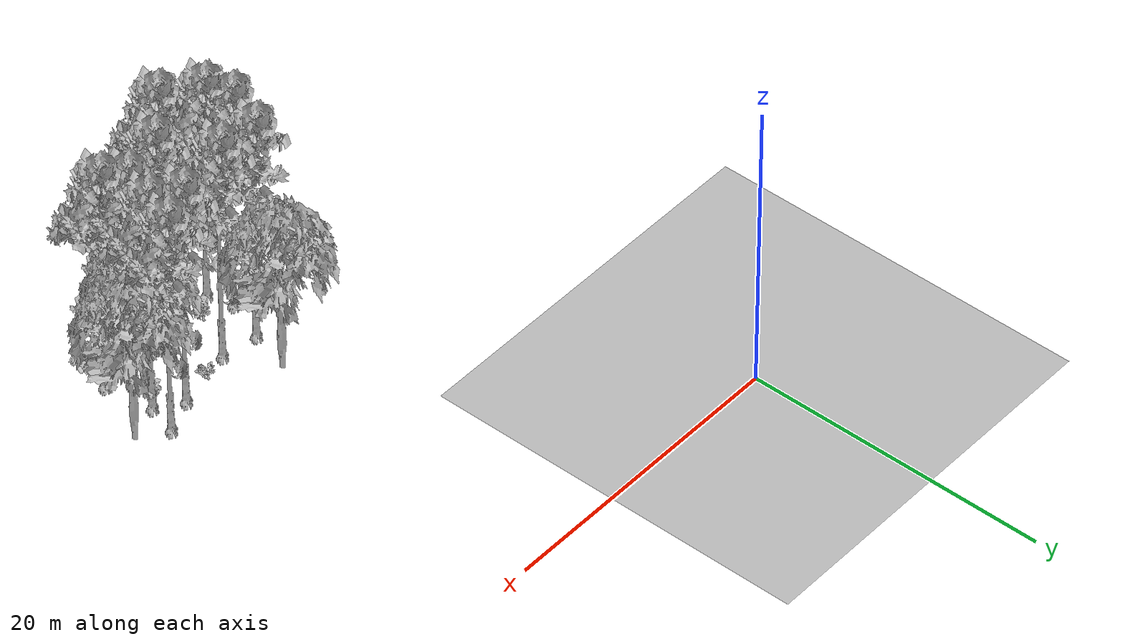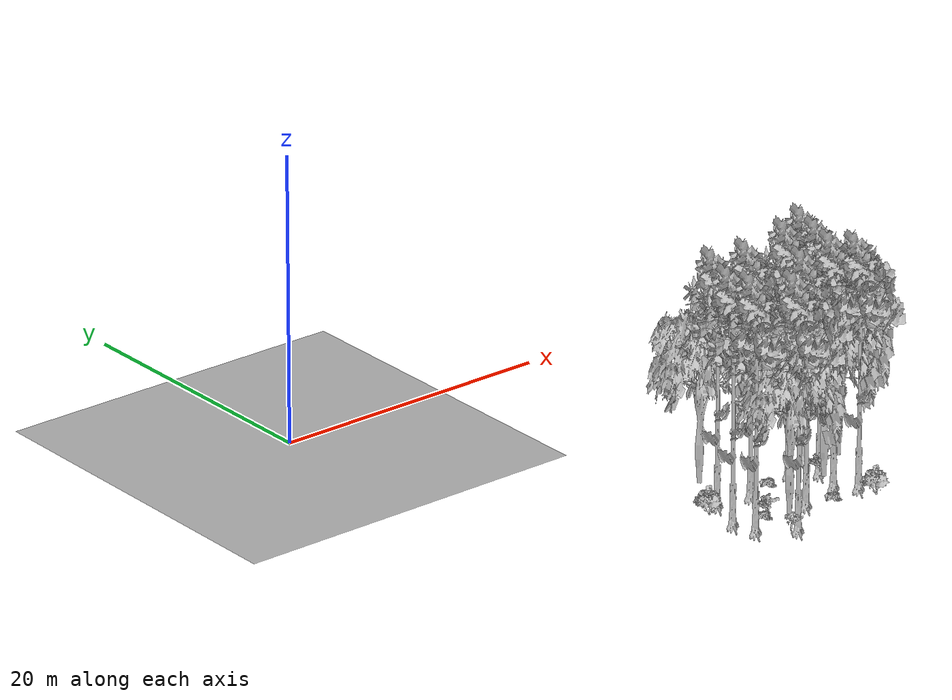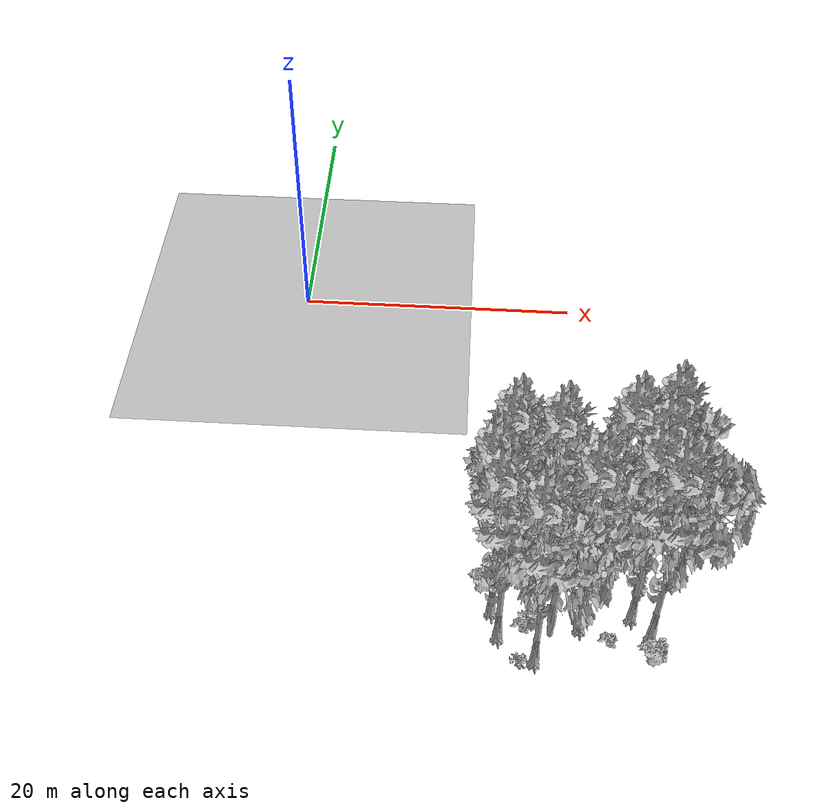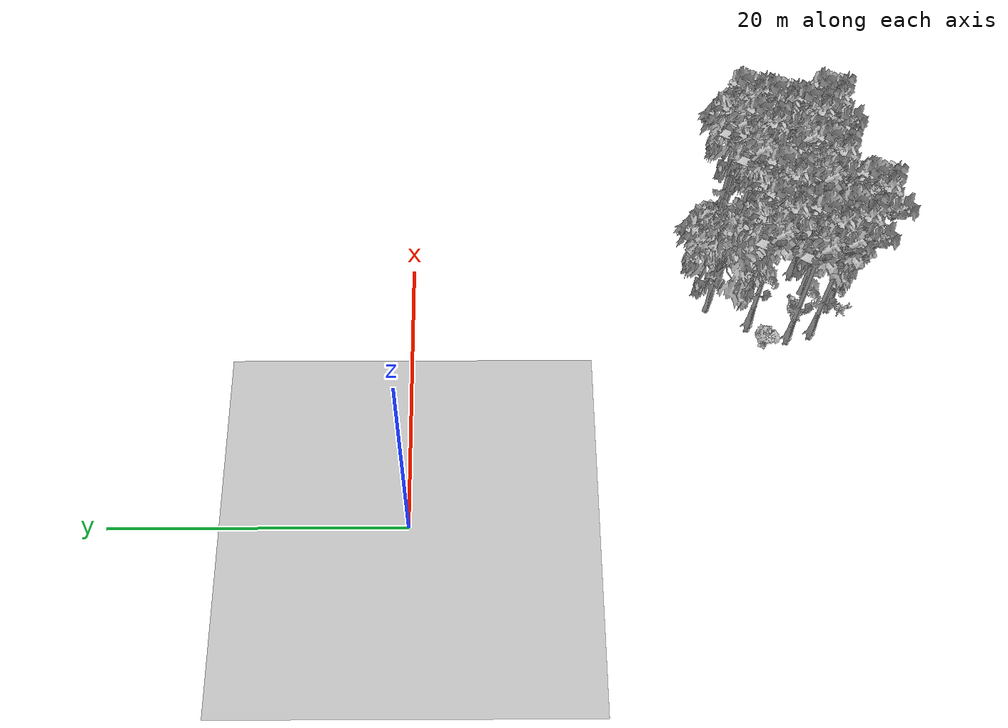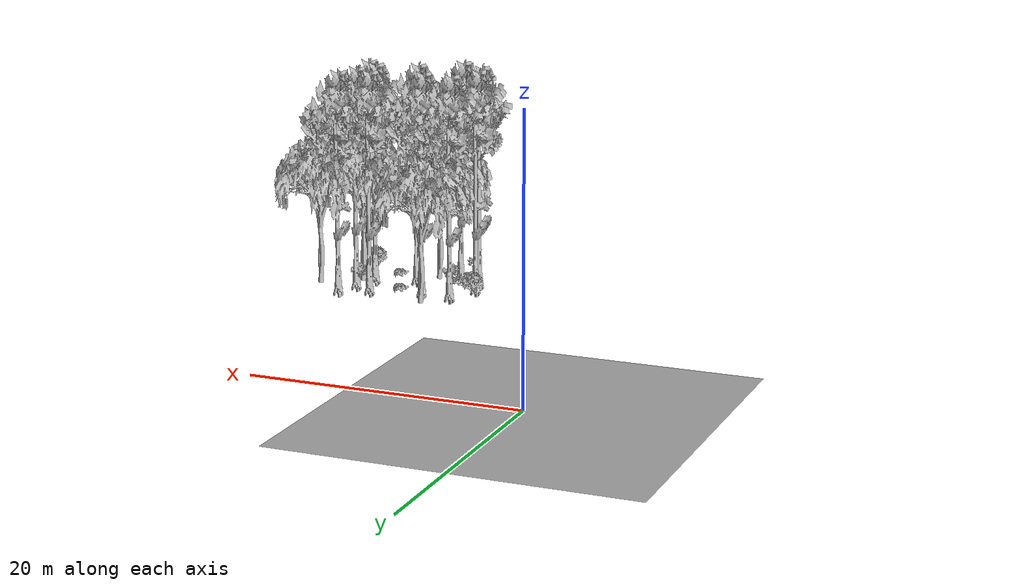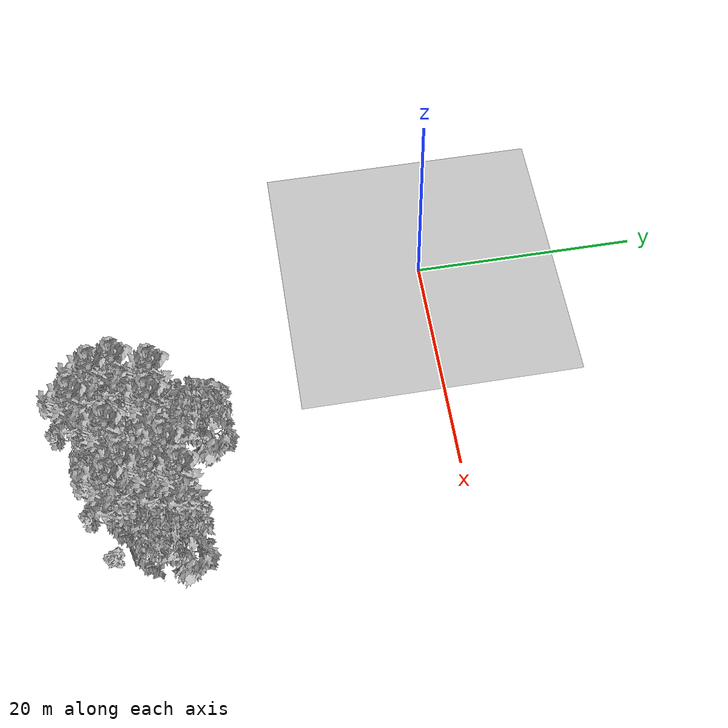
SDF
<sdf version="1.7">
 <world name="default">
  <model name="ground_plane">
   <static>1</static>
   <link name="link">
    <collision name="collision">
     <pose>-50 0 0 0 -0 0</pose>
     <geometry><plane><normal>0 0 1</normal><size>80 80</size></plane></geometry>
     <surface><contact><ode><min_depth>0.01</min_depth><max_vel>0</max_vel></ode></contact></surface>
    </collision>
    <visual name="grass">
     <cast_shadows>0</cast_shadows>
     <geometry>
      <mesh>
       <scale>0.46714285714285714 0.46714285714285714 0.1</scale>
       <uri>file://grass_plane/meshes/grass_plane.dae</uri>
      </mesh>
     </geometry>
    </visual>
   </link>
  </model>
  <model name="Tree 10">
   <static>1</static>
   <pose>26.165141318187068 -23.452140027372394 0 1.57079 -0 0</pose>
   <link name="link">
    <collision name="collision">
     <geometry><mesh><scale>3.5 5 3.5</scale><uri>model://tree_2/meshes/tree_2.obj</uri></mesh></geometry>
    </collision>
    <visual name="visual">
     <geometry><mesh><scale>3.5 5 3.5</scale><uri>model://tree_2/meshes/tree_2.obj</uri></mesh></geometry>
    </visual>
   </link>
  </model>
  <model name="Tree 19">
   <static>1</static>
   <pose>24.2888758817339 -22.473327997782818 0 1.57079 -0 0</pose>
   <link name="link">
    <collision name="collision">
     <geometry><mesh><scale>3.5 5 3.5</scale><uri>model://tree_9/meshes/tree_9.obj</uri></mesh></geometry>
    </collision>
    <visual name="visual">
     <geometry><mesh><scale>3.5 5 3.5</scale><uri>model://tree_9/meshes/tree_9.obj</uri></mesh></geometry>
    </visual>
   </link>
  </model>
  <model name="Tree 47">
   <static>1</static>
   <pose>22.04450325395301 -23.397041651891712 0 1.57079 -0 0</pose>
   <link name="link">
    <collision name="collision">
     <geometry><mesh><scale>3.5 5 3.5</scale><uri>model://tree_9/meshes/tree_9.obj</uri></mesh></geometry>
    </collision>
    <visual name="visual">
     <geometry><mesh><scale>3.5 5 3.5</scale><uri>model://tree_9/meshes/tree_9.obj</uri></mesh></geometry>
    </visual>
   </link>
  </model>
  <model name="Tree 95">
   <static>1</static>
   <pose>14.462358851647686 -26.692512228428534 0 1.57079 -0 0</pose>
   <link name="link">
    <collision name="collision">
     <geometry><mesh><scale>3.5 5 3.5</scale><uri>model://tree_9/meshes/tree_9.obj</uri></mesh></geometry>
    </collision>
    <visual name="visual">
     <geometry><mesh><scale>3.5 5 3.5</scale><uri>model://tree_9/meshes/tree_9.obj</uri></mesh></geometry>
    </visual>
   </link>
  </model>
  <model name="Tree 206">
   <static>1</static>
   <pose>23.33605595323226 -25.25843349962825 0 1.57079 -0 0</pose>
   <link name="link">
    <collision name="collision">
     <geometry><mesh><scale>3.5 5 3.5</scale><uri>model://tree_2/meshes/tree_2.obj</uri></mesh></geometry>
    </collision>
    <visual name="visual">
     <geometry><mesh><scale>3.5 5 3.5</scale><uri>model://tree_2/meshes/tree_2.obj</uri></mesh></geometry>
    </visual>
   </link>
  </model>
  <model name="Tree 219">
   <static>1</static>
   <pose>24.16564116847647 -27.711173810759504 0 1.57079 -0 0</pose>
   <link name="link">
    <collision name="collision">
     <geometry><mesh><scale>3.5 5 3.5</scale><uri>model://tree_9/meshes/tree_9.obj</uri></mesh></geometry>
    </collision>
    <visual name="visual">
     <geometry><mesh><scale>3.5 5 3.5</scale><uri>model://tree_9/meshes/tree_9.obj</uri></mesh></geometry>
    </visual>
   </link>
  </model>
  <model name="Tree 236">
   <static>1</static>
   <pose>14.878415031089617 -28.397017624060368 0 1.57079 -0 0</pose>
   <link name="link">
    <collision name="collision">
     <geometry><mesh><scale>3.5 5 3.5</scale><uri>model://tree_9/meshes/tree_9.obj</uri></mesh></geometry>
    </collision>
    <visual name="visual">
     <geometry><mesh><scale>3.5 5 3.5</scale><uri>model://tree_9/meshes/tree_9.obj</uri></mesh></geometry>
    </visual>
   </link>
  </model>
  <model name="Tree 307">
   <static>1</static>
   <pose>16.5136959873614 -21.031442235963745 0 1.57079 -0 0</pose>
   <link name="link">
    <collision name="collision">
     <geometry><mesh><scale>3.5 5 3.5</scale><uri>model://tree_2/meshes/tree_2.obj</uri></mesh></geometry>
    </collision>
    <visual name="visual">
     <geometry><mesh><scale>3.5 5 3.5</scale><uri>model://tree_2/meshes/tree_2.obj</uri></mesh></geometry>
    </visual>
   </link>
  </model>
  <model name="Tree 398">
   <static>1</static>
   <pose>18.007954454991243 -24.325017276855625 0 1.57079 -0 0</pose>
   <link name="link">
    <collision name="collision">
     <geometry><mesh><scale>3.5 5 3.5</scale><uri>model://tree_9/meshes/tree_9.obj</uri></mesh></geometry>
    </collision>
    <visual name="visual">
     <geometry><mesh><scale>3.5 5 3.5</scale><uri>model://tree_9/meshes/tree_9.obj</uri></mesh></geometry>
    </visual>
   </link>
  </model>
  <model name="Tree 427">
   <static>1</static>
   <pose>23.037806148935736 -26.586823607879424 0 1.57079 -0 0</pose>
   <link name="link">
    <collision name="collision">
     <geometry><mesh><scale>3.5 5 3.5</scale><uri>model://tree_9/meshes/tree_9.obj</uri></mesh></geometry>
    </collision>
    <visual name="visual">
     <geometry><mesh><scale>3.5 5 3.5</scale><uri>model://tree_9/meshes/tree_9.obj</uri></mesh></geometry>
    </visual>
   </link>
  </model>
  <model name="Tree 454">
   <static>1</static>
   <pose>19.86027438147611 -27.533828696907527 0 1.57079 -0 0</pose>
   <link name="link">
    <collision name="collision">
     <geometry><mesh><scale>3.5 5 3.5</scale><uri>model://tree_9/meshes/tree_9.obj</uri></mesh></geometry>
    </collision>
    <visual name="visual">
     <geometry><mesh><scale>3.5 5 3.5</scale><uri>model://tree_9/meshes/tree_9.obj</uri></mesh></geometry>
    </visual>
   </link>
  </model>
  <model name="Tree 531">
   <static>1</static>
   <pose>17.075614800741533 -29.9303673519415 0 1.57079 -0 0</pose>
   <link name="link">
    <collision name="collision">
     <geometry><mesh><scale>3.5 5 3.5</scale><uri>model://tree_9/meshes/tree_9.obj</uri></mesh></geometry>
    </collision>
    <visual name="visual">
     <geometry><mesh><scale>3.5 5 3.5</scale><uri>model://tree_9/meshes/tree_9.obj</uri></mesh></geometry>
    </visual>
   </link>
  </model>
  <model name="Tree 562">
   <static>1</static>
   <pose>17.97416797176917 -28.014825767112967 0 1.57079 -0 0</pose>
   <link name="link">
    <collision name="collision">
     <geometry><mesh><scale>3.5 5 3.5</scale><uri>model://tree_2/meshes/tree_2.obj</uri></mesh></geometry>
    </collision>
    <visual name="visual">
     <geometry><mesh><scale>3.5 5 3.5</scale><uri>model://tree_2/meshes/tree_2.obj</uri></mesh></geometry>
    </visual>
   </link>
  </model>
  <model name="Tree 584">
   <static>1</static>
   <pose>23.692332608806844 -24.47613770320979 0 1.57079 -0 0</pose>
   <link name="link">
    <collision name="collision">
     <geometry><mesh><scale>3.5 5 3.5</scale><uri>model://tree_9/meshes/tree_9.obj</uri></mesh></geometry>
    </collision>
    <visual name="visual">
     <geometry><mesh><scale>3.5 5 3.5</scale><uri>model://tree_9/meshes/tree_9.obj</uri></mesh></geometry>
    </visual>
   </link>
  </model>
  <model name="Tree 636">
   <static>1</static>
   <pose>15.518412892420855 -23.98357392745816 0 1.57079 -0 0</pose>
   <link name="link">
    <collision name="collision">
     <geometry><mesh><scale>3.5 5 3.5</scale><uri>model://tree_9/meshes/tree_9.obj</uri></mesh></geometry>
    </collision>
    <visual name="visual">
     <geometry><mesh><scale>3.5 5 3.5</scale><uri>model://tree_9/meshes/tree_9.obj</uri></mesh></geometry>
    </visual>
   </link>
  </model>
  <model name="Bush 44">
   <static>1</static>
   <pose>19.694441920399363 -24.07710272241036 0 1.57079 -0 0</pose>
   <link name="link">
    <collision name="collision">
     <geometry><mesh><scale>2 2 2</scale><uri>model://bush_2/meshes/bush_2.obj</uri></mesh></geometry>
     <surface><contact><collide_without_contact>false</collide_without_contact></contact></surface>
    </collision>
    <visual name="visual">
     <geometry><mesh><scale>2 2 2</scale><uri>model://bush_2/meshes/bush_2.obj</uri></mesh></geometry>
    </visual>
   </link>
  </model>
  <model name="Bush 79">
   <static>1</static>
   <pose>24.12168941084294 -29.47218548767807 0 1.57079 -0 0</pose>
   <link name="link">
    <collision name="collision">
     <geometry><mesh><scale>2 2 2</scale><uri>model://bush_1/meshes/bush_1.obj</uri></mesh></geometry>
     <surface><contact><collide_without_contact>false</collide_without_contact></contact></surface>
    </collision>
    <visual name="visual">
     <geometry><mesh><scale>2 2 2</scale><uri>model://bush_1/meshes/bush_1.obj</uri></mesh></geometry>
    </visual>
   </link>
  </model>
  <model name="Bush 148">
   <static>1</static>
   <pose>16.313219014614013 -27.53567806476906 0 1.57079 -0 0</pose>
   <link name="link">
    <collision name="collision">
     <geometry><mesh><scale>2 2 2</scale><uri>model://bush_2/meshes/bush_2.obj</uri></mesh></geometry>
     <surface><contact><collide_without_contact>false</collide_without_contact></contact></surface>
    </collision>
    <visual name="visual">
     <geometry><mesh><scale>2 2 2</scale><uri>model://bush_2/meshes/bush_2.obj</uri></mesh></geometry>
    </visual>
   </link>
  </model>
  <model name="Bush 293">
   <static>1</static>
   <pose>16.151056527851978 -30.38166254583014 0 1.57079 -0 0</pose>
   <link name="link">
    <collision name="collision">
     <geometry><mesh><scale>2 2 2</scale><uri>model://bush_5/meshes/bush_5.obj</uri></mesh></geometry>
     <surface><contact><collide_without_contact>false</collide_without_contact></contact></surface>
    </collision>
    <visual name="visual">
     <geometry><mesh><scale>2 2 2</scale><uri>model://bush_5/meshes/bush_5.obj</uri></mesh></geometry>
    </visual>
   </link>
  </model>
  <model name="Bush 421">
   <static>1</static>
   <pose>16.8720200961643 -27.283938363463143 0 1.57079 -0 0</pose>
   <link name="link">
    <collision name="collision">
     <geometry><mesh><scale>2 2 2</scale><uri>model://bush_0/meshes/bush_0.obj</uri></mesh></geometry>
     <surface><contact><collide_without_contact>false</collide_without_contact></contact></surface>
    </collision>
    <visual name="visual">
     <geometry><mesh><scale>2 2 2</scale><uri>model://bush_0/meshes/bush_0.obj</uri></mesh></geometry>
    </visual>
   </link>
  </model>
  <model name="Bush 441">
   <static>1</static>
   <pose>23.59394568491659 -24.687504138807128 0 1.57079 -0 0</pose>
   <link name="link">
    <collision name="collision">
     <geometry><mesh><scale>2 2 2</scale><uri>model://bush_0/meshes/bush_0.obj</uri></mesh></geometry>
     <surface><contact><collide_without_contact>false</collide_without_contact></contact></surface>
    </collision>
    <visual name="visual">
     <geometry><mesh><scale>2 2 2</scale><uri>model://bush_0/meshes/bush_0.obj</uri></mesh></geometry>
    </visual>
   </link>
  </model>
  <model name="Bush 484">
   <static>1</static>
   <pose>13.940844203867464 -25.093794623172457 0 1.57079 -0 0</pose>
   <link name="link">
    <collision name="collision">
     <geometry><mesh><scale>2 2 2</scale><uri>model://bush_1/meshes/bush_1.obj</uri></mesh></geometry>
     <surface><contact><collide_without_contact>false</collide_without_contact></contact></surface>
    </collision>
    <visual name="visual">
     <geometry><mesh><scale>2 2 2</scale><uri>model://bush_1/meshes/bush_1.obj</uri></mesh></geometry>
    </visual>
   </link>
  </model>
  <model name="Bush 514">
   <static>1</static>
   <pose>21.548437669084564 -28.21754564911169 0 1.57079 -0 0</pose>
   <link name="link">
    <collision name="collision">
     <geometry><mesh><scale>2 2 2</scale><uri>model://bush_2/meshes/bush_2.obj</uri></mesh></geometry>
     <surface><contact><collide_without_contact>false</collide_without_contact></contact></surface>
    </collision>
    <visual name="visual">
     <geometry><mesh><scale>2 2 2</scale><uri>model://bush_2/meshes/bush_2.obj</uri></mesh></geometry>
    </visual>
   </link>
  </model>
 </world>
</sdf>
